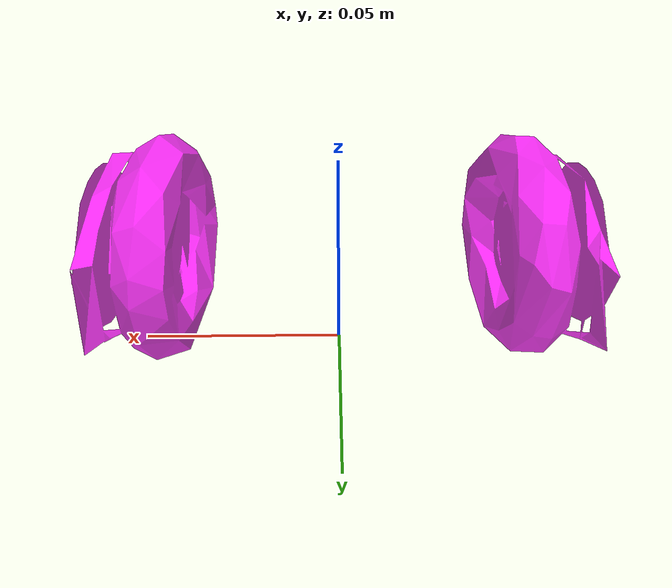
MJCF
<mujoco model="bottom_watertight_tiny">
  <default>
    <default group="2" type="mesh" contype="0" conaffinity="0">
      <geom group="2" type="mesh" contype="0" conaffinity="0"/>
    </default>
    <default group="3" type="mesh">
      <geom group="3" type="mesh"/>
    </default>
  </default>
  <asset>
    <mesh file="bottom_watertight_tiny.obj"/>
    <mesh file="bottom_watertight_tiny_collision_0.obj"/>
    <mesh file="bottom_watertight_tiny_collision_1.obj"/>
    <mesh file="bottom_watertight_tiny_collision_2.obj"/>
    <mesh file="bottom_watertight_tiny_collision_3.obj"/>
    <mesh file="bottom_watertight_tiny_collision_4.obj"/>
    <mesh file="bottom_watertight_tiny_collision_5.obj"/>
    <mesh file="bottom_watertight_tiny_collision_6.obj"/>
    <mesh file="bottom_watertight_tiny_collision_7.obj"/>
    <mesh file="bottom_watertight_tiny_collision_8.obj"/>
    <mesh file="bottom_watertight_tiny_collision_9.obj"/>
    <mesh file="bottom_watertight_tiny_collision_10.obj"/>
    <mesh file="bottom_watertight_tiny_collision_11.obj"/>
    <mesh file="bottom_watertight_tiny_collision_12.obj"/>
    <mesh file="bottom_watertight_tiny_collision_13.obj"/>
    <mesh file="bottom_watertight_tiny_collision_14.obj"/>
    <mesh file="bottom_watertight_tiny_collision_15.obj"/>
    <mesh file="bottom_watertight_tiny_collision_16.obj"/>
    <mesh file="bottom_watertight_tiny_collision_17.obj"/>
    <mesh file="bottom_watertight_tiny_collision_18.obj"/>
    <mesh file="bottom_watertight_tiny_collision_19.obj"/>
    <mesh file="bottom_watertight_tiny_collision_20.obj"/>
    <mesh file="bottom_watertight_tiny_collision_21.obj"/>
    <mesh file="bottom_watertight_tiny_collision_22.obj"/>
    <mesh file="bottom_watertight_tiny_collision_23.obj"/>
    <mesh file="bottom_watertight_tiny_collision_24.obj"/>
    <mesh file="bottom_watertight_tiny_collision_25.obj"/>
    <mesh file="bottom_watertight_tiny_collision_26.obj"/>
    <mesh file="bottom_watertight_tiny_collision_27.obj"/>
    <mesh file="bottom_watertight_tiny_collision_28.obj"/>
    <mesh file="bottom_watertight_tiny_collision_29.obj"/>
    <mesh file="bottom_watertight_tiny_collision_30.obj"/>
    <mesh file="bottom_watertight_tiny_collision_31.obj"/>
    <mesh file="bottom_watertight_tiny_collision_32.obj"/>
    <mesh file="bottom_watertight_tiny_collision_33.obj"/>
    <mesh file="bottom_watertight_tiny_collision_34.obj"/>
    <mesh file="bottom_watertight_tiny_collision_35.obj"/>
    <mesh file="bottom_watertight_tiny_collision_36.obj"/>
    <mesh file="bottom_watertight_tiny_collision_37.obj"/>
    <mesh file="bottom_watertight_tiny_collision_38.obj"/>
    <mesh file="bottom_watertight_tiny_collision_39.obj"/>
    <mesh file="bottom_watertight_tiny_collision_40.obj"/>
    <mesh file="bottom_watertight_tiny_collision_41.obj"/>
    <mesh file="bottom_watertight_tiny_collision_42.obj"/>
    <mesh file="bottom_watertight_tiny_collision_43.obj"/>
    <mesh file="bottom_watertight_tiny_collision_44.obj"/>
    <mesh file="bottom_watertight_tiny_collision_45.obj"/>
    <mesh file="bottom_watertight_tiny_collision_46.obj"/>
    <mesh file="bottom_watertight_tiny_collision_47.obj"/>
    <mesh file="bottom_watertight_tiny_collision_48.obj"/>
    <mesh file="bottom_watertight_tiny_collision_49.obj"/>
    <mesh file="bottom_watertight_tiny_collision_50.obj"/>
    <mesh file="bottom_watertight_tiny_collision_51.obj"/>
    <mesh file="bottom_watertight_tiny_collision_52.obj"/>
    <mesh file="bottom_watertight_tiny_collision_53.obj"/>
    <mesh file="bottom_watertight_tiny_collision_54.obj"/>
    <mesh file="bottom_watertight_tiny_collision_55.obj"/>
    <mesh file="bottom_watertight_tiny_collision_56.obj"/>
    <mesh file="bottom_watertight_tiny_collision_57.obj"/>
    <mesh file="bottom_watertight_tiny_collision_58.obj"/>
    <mesh file="bottom_watertight_tiny_collision_59.obj"/>
    <mesh file="bottom_watertight_tiny_collision_60.obj"/>
    <mesh file="bottom_watertight_tiny_collision_61.obj"/>
    <mesh file="bottom_watertight_tiny_collision_62.obj"/>
    <mesh file="bottom_watertight_tiny_collision_63.obj"/>
    <mesh file="bottom_watertight_tiny_collision_64.obj"/>
    <mesh file="bottom_watertight_tiny_collision_65.obj"/>
    <mesh file="bottom_watertight_tiny_collision_66.obj"/>
    <mesh file="bottom_watertight_tiny_collision_67.obj"/>
    <mesh file="bottom_watertight_tiny_collision_68.obj"/>
    <mesh file="bottom_watertight_tiny_collision_69.obj"/>
    <mesh file="bottom_watertight_tiny_collision_70.obj"/>
    <mesh file="bottom_watertight_tiny_collision_71.obj"/>
    <mesh file="bottom_watertight_tiny_collision_72.obj"/>
    <mesh file="bottom_watertight_tiny_collision_73.obj"/>
    <mesh file="bottom_watertight_tiny_collision_74.obj"/>
    <mesh file="bottom_watertight_tiny_collision_75.obj"/>
    <mesh file="bottom_watertight_tiny_collision_76.obj"/>
    <mesh file="bottom_watertight_tiny_collision_77.obj"/>
    <mesh file="bottom_watertight_tiny_collision_78.obj"/>
    <mesh file="bottom_watertight_tiny_collision_79.obj"/>
    <mesh file="bottom_watertight_tiny_collision_80.obj"/>
    <mesh file="bottom_watertight_tiny_collision_81.obj"/>
    <mesh file="bottom_watertight_tiny_collision_82.obj"/>
    <mesh file="bottom_watertight_tiny_collision_83.obj"/>
    <mesh file="bottom_watertight_tiny_collision_84.obj"/>
    <mesh file="bottom_watertight_tiny_collision_85.obj"/>
    <mesh file="bottom_watertight_tiny_collision_86.obj"/>
    <mesh file="bottom_watertight_tiny_collision_87.obj"/>
    <mesh file="bottom_watertight_tiny_collision_88.obj"/>
    <mesh file="bottom_watertight_tiny_collision_89.obj"/>
    <mesh file="bottom_watertight_tiny_collision_90.obj"/>
    <mesh file="bottom_watertight_tiny_collision_91.obj"/>
    <mesh file="bottom_watertight_tiny_collision_92.obj"/>
    <mesh file="bottom_watertight_tiny_collision_93.obj"/>
    <mesh file="bottom_watertight_tiny_collision_94.obj"/>
    <mesh file="bottom_watertight_tiny_collision_95.obj"/>
    <mesh file="bottom_watertight_tiny_collision_96.obj"/>
    <mesh file="bottom_watertight_tiny_collision_97.obj"/>
    <mesh file="bottom_watertight_tiny_collision_98.obj"/>
    <mesh file="bottom_watertight_tiny_collision_99.obj"/>
    <mesh file="bottom_watertight_tiny_collision_100.obj"/>
    <mesh file="bottom_watertight_tiny_collision_101.obj"/>
  </asset>
  <worldbody>
    <body name="bottom_watertight_tiny">
      <freejoint/>
      <geom mesh="bottom_watertight_tiny" group="2" type="mesh" rgba="1 0 1 0.8" contype="0" conaffinity="0"/>
      <geom mesh="bottom_watertight_tiny_collision_0" rgba="0.24096195613972105 0.5421580783433462 0.5392983928726247 1" group="3" type="mesh"/>
      <geom mesh="bottom_watertight_tiny_collision_1" rgba="0.6319146097396526 0.2818817736647574 0.16297873595078338 1" group="3" type="mesh"/>
      <geom mesh="bottom_watertight_tiny_collision_2" rgba="0.9082388305611817 0.9733134207968425 0.19926989230631542 1" group="3" type="mesh"/>
      <geom mesh="bottom_watertight_tiny_collision_3" rgba="0.9031623966752739 0.8375604274779315 0.08048533255276913 1" group="3" type="mesh"/>
      <geom mesh="bottom_watertight_tiny_collision_4" rgba="0.8160312159540282 0.7337352864206964 0.9858361726143116 1" group="3" type="mesh"/>
      <geom mesh="bottom_watertight_tiny_collision_5" rgba="0.7733738010002351 0.8795770396820035 0.8157599697077775 1" group="3" type="mesh"/>
      <geom mesh="bottom_watertight_tiny_collision_6" rgba="0.22276822748463732 0.258961487470838 0.6933595917677897 1" group="3" type="mesh"/>
      <geom mesh="bottom_watertight_tiny_collision_7" rgba="0.3126515100157229 0.21538793652305555 0.29389439015335717 1" group="3" type="mesh"/>
      <geom mesh="bottom_watertight_tiny_collision_8" rgba="0.5709482207702562 0.4337269094244868 0.944271661142551 1" group="3" type="mesh"/>
      <geom mesh="bottom_watertight_tiny_collision_9" rgba="0.8593975981107964 0.520338718179048 0.28311545852344566 1" group="3" type="mesh"/>
      <geom mesh="bottom_watertight_tiny_collision_10" rgba="0.303957038336757 0.5319218543688172 0.5150392606020688 1" group="3" type="mesh"/>
      <geom mesh="bottom_watertight_tiny_collision_11" rgba="0.861187536874124 0.7666954833362845 0.8849456834834334 1" group="3" type="mesh"/>
      <geom mesh="bottom_watertight_tiny_collision_12" rgba="0.5318329966046901 0.34101510811679225 0.20459282774213805 1" group="3" type="mesh"/>
      <geom mesh="bottom_watertight_tiny_collision_13" rgba="0.3535564203216044 0.7876060704217069 0.8927686082728027 1" group="3" type="mesh"/>
      <geom mesh="bottom_watertight_tiny_collision_14" rgba="0.7636820341390071 0.5569099179790775 0.6131038020788184 1" group="3" type="mesh"/>
      <geom mesh="bottom_watertight_tiny_collision_15" rgba="0.1223729822706704 0.13566067136763016 0.3851033651891651 1" group="3" type="mesh"/>
      <geom mesh="bottom_watertight_tiny_collision_16" rgba="0.9547397705832994 0.02429668045529132 0.16611042518121888 1" group="3" type="mesh"/>
      <geom mesh="bottom_watertight_tiny_collision_17" rgba="0.6295816598333575 0.5396597568944876 0.44147778990282827 1" group="3" type="mesh"/>
      <geom mesh="bottom_watertight_tiny_collision_18" rgba="0.5317850918304454 0.0613021228207542 0.9746938691709086 1" group="3" type="mesh"/>
      <geom mesh="bottom_watertight_tiny_collision_19" rgba="0.8917376873574734 0.18220652880549726 0.4594202065704418 1" group="3" type="mesh"/>
      <geom mesh="bottom_watertight_tiny_collision_20" rgba="0.7607599095839727 0.9578285105600348 0.9207620313885926 1" group="3" type="mesh"/>
      <geom mesh="bottom_watertight_tiny_collision_21" rgba="0.9221835110649367 0.6190470382260546 0.266562146319264 1" group="3" type="mesh"/>
      <geom mesh="bottom_watertight_tiny_collision_22" rgba="0.008699742470211658 0.12386153815552281 0.6428395540017974 1" group="3" type="mesh"/>
      <geom mesh="bottom_watertight_tiny_collision_23" rgba="0.5663123627520534 0.3800318213613235 0.6692720075202766 1" group="3" type="mesh"/>
      <geom mesh="bottom_watertight_tiny_collision_24" rgba="0.6849452573175914 0.655985352556722 0.22937564675382582 1" group="3" type="mesh"/>
      <geom mesh="bottom_watertight_tiny_collision_25" rgba="0.5194615215078798 0.32476780156250473 0.6974895102100831 1" group="3" type="mesh"/>
      <geom mesh="bottom_watertight_tiny_collision_26" rgba="0.32422957273229713 0.8598640851939391 0.475855854000825 1" group="3" type="mesh"/>
      <geom mesh="bottom_watertight_tiny_collision_27" rgba="0.9095864011272532 0.9226680077137589 0.492825142802335 1" group="3" type="mesh"/>
      <geom mesh="bottom_watertight_tiny_collision_28" rgba="0.30996289171130975 0.29062289721132717 0.07792903595459522 1" group="3" type="mesh"/>
      <geom mesh="bottom_watertight_tiny_collision_29" rgba="0.3430377215220539 0.12402681450751996 0.21156162052305072 1" group="3" type="mesh"/>
      <geom mesh="bottom_watertight_tiny_collision_30" rgba="0.7699336959273131 0.04544439974883152 0.1695942646708718 1" group="3" type="mesh"/>
      <geom mesh="bottom_watertight_tiny_collision_31" rgba="0.653045621784259 0.6264923296675311 0.931837762431559 1" group="3" type="mesh"/>
      <geom mesh="bottom_watertight_tiny_collision_32" rgba="0.07040844520532796 0.05081639750880251 0.798559746903004 1" group="3" type="mesh"/>
      <geom mesh="bottom_watertight_tiny_collision_33" rgba="0.21277514590467372 0.2390168557353346 0.9337664320362916 1" group="3" type="mesh"/>
      <geom mesh="bottom_watertight_tiny_collision_34" rgba="0.4800493019066163 0.28779438898262943 0.016864426431992707 1" group="3" type="mesh"/>
      <geom mesh="bottom_watertight_tiny_collision_35" rgba="0.4200955264488664 0.7746413932885478 0.3824196185197132 1" group="3" type="mesh"/>
      <geom mesh="bottom_watertight_tiny_collision_36" rgba="0.24881003355678488 0.7277908885934967 0.39856230525409686 1" group="3" type="mesh"/>
      <geom mesh="bottom_watertight_tiny_collision_37" rgba="0.8501002679110436 0.45521352630812617 0.48609212532840584 1" group="3" type="mesh"/>
      <geom mesh="bottom_watertight_tiny_collision_38" rgba="0.0950960169553563 0.02741973564866984 0.6295492606903732 1" group="3" type="mesh"/>
      <geom mesh="bottom_watertight_tiny_collision_39" rgba="0.2571031728308264 0.3137130891538956 0.28860233737211316 1" group="3" type="mesh"/>
      <geom mesh="bottom_watertight_tiny_collision_40" rgba="0.9867240892985447 0.5352282283033454 0.3424995787151429 1" group="3" type="mesh"/>
      <geom mesh="bottom_watertight_tiny_collision_41" rgba="0.7202504616531555 0.7724231241901712 0.03639670152752361 1" group="3" type="mesh"/>
      <geom mesh="bottom_watertight_tiny_collision_42" rgba="0.058836495174474646 0.6967600219807811 0.1576109719724773 1" group="3" type="mesh"/>
      <geom mesh="bottom_watertight_tiny_collision_43" rgba="0.40900647057081796 0.6091690147384105 0.904684254601225 1" group="3" type="mesh"/>
      <geom mesh="bottom_watertight_tiny_collision_44" rgba="0.8954312090295704 0.6109047468140707 0.2317131087711638 1" group="3" type="mesh"/>
      <geom mesh="bottom_watertight_tiny_collision_45" rgba="0.3520353204916288 0.11910803444766993 0.7526750901229481 1" group="3" type="mesh"/>
      <geom mesh="bottom_watertight_tiny_collision_46" rgba="0.8393618528535813 0.8570430074558884 0.628302786993944 1" group="3" type="mesh"/>
      <geom mesh="bottom_watertight_tiny_collision_47" rgba="0.29325339906010406 0.7047452111490363 0.5161933022080348 1" group="3" type="mesh"/>
      <geom mesh="bottom_watertight_tiny_collision_48" rgba="0.7411333553759425 0.9247405939933916 0.12868415455042193 1" group="3" type="mesh"/>
      <geom mesh="bottom_watertight_tiny_collision_49" rgba="0.05077113195867089 0.12138198472616635 0.47470012205158085 1" group="3" type="mesh"/>
      <geom mesh="bottom_watertight_tiny_collision_50" rgba="0.5186851632455296 0.8894039767972928 0.06792087102246158 1" group="3" type="mesh"/>
      <geom mesh="bottom_watertight_tiny_collision_51" rgba="0.6876442208094663 0.1036123611707036 0.23030400797878414 1" group="3" type="mesh"/>
      <geom mesh="bottom_watertight_tiny_collision_52" rgba="0.8393191240846926 0.9311676758345845 0.664933296483399 1" group="3" type="mesh"/>
      <geom mesh="bottom_watertight_tiny_collision_53" rgba="0.19684147431932597 0.7097409894103471 0.4156975105659094 1" group="3" type="mesh"/>
      <geom mesh="bottom_watertight_tiny_collision_54" rgba="0.7137611292808963 0.34026411495648645 0.6378232278328893 1" group="3" type="mesh"/>
      <geom mesh="bottom_watertight_tiny_collision_55" rgba="0.7090579009921597 0.08401865983811574 0.03215706338555002 1" group="3" type="mesh"/>
      <geom mesh="bottom_watertight_tiny_collision_56" rgba="0.17871209380041808 0.43204567064513477 0.16339897069314724 1" group="3" type="mesh"/>
      <geom mesh="bottom_watertight_tiny_collision_57" rgba="0.08186452000000188 0.7835802104597832 0.793095083864112 1" group="3" type="mesh"/>
      <geom mesh="bottom_watertight_tiny_collision_58" rgba="0.9886452250071632 0.41265717474469255 0.3451866963487552 1" group="3" type="mesh"/>
      <geom mesh="bottom_watertight_tiny_collision_59" rgba="0.07803452752028583 0.9135131933603313 0.27054708205366285 1" group="3" type="mesh"/>
      <geom mesh="bottom_watertight_tiny_collision_60" rgba="0.6002865251396851 0.00020142178638205 0.30011674083355133 1" group="3" type="mesh"/>
      <geom mesh="bottom_watertight_tiny_collision_61" rgba="0.9768310703432512 0.05338592808550746 0.477706173584883 1" group="3" type="mesh"/>
      <geom mesh="bottom_watertight_tiny_collision_62" rgba="0.451598017159066 0.5814920177776253 0.43024562491784446 1" group="3" type="mesh"/>
      <geom mesh="bottom_watertight_tiny_collision_63" rgba="0.9774620267920568 0.2508681628907772 0.4723344819741975 1" group="3" type="mesh"/>
      <geom mesh="bottom_watertight_tiny_collision_64" rgba="0.3558307203767861 0.6956121403178945 0.7161171842955549 1" group="3" type="mesh"/>
      <geom mesh="bottom_watertight_tiny_collision_65" rgba="0.5399614606512531 0.5594570430556822 0.21737959660744066 1" group="3" type="mesh"/>
      <geom mesh="bottom_watertight_tiny_collision_66" rgba="0.3257382929158158 0.5538301360974766 0.652642112292278 1" group="3" type="mesh"/>
      <geom mesh="bottom_watertight_tiny_collision_67" rgba="0.16485273310854098 0.6569796577121276 0.7272067054447007 1" group="3" type="mesh"/>
      <geom mesh="bottom_watertight_tiny_collision_68" rgba="0.8876215115043942 0.6046339830960713 0.22418366011841695 1" group="3" type="mesh"/>
      <geom mesh="bottom_watertight_tiny_collision_69" rgba="0.9436235618903076 0.7842313693576337 0.9859917432390126 1" group="3" type="mesh"/>
      <geom mesh="bottom_watertight_tiny_collision_70" rgba="0.19751106208570024 0.970583439723533 0.5336081963108904 1" group="3" type="mesh"/>
      <geom mesh="bottom_watertight_tiny_collision_71" rgba="0.42121299684072144 0.8846235786914567 0.855957474009495 1" group="3" type="mesh"/>
      <geom mesh="bottom_watertight_tiny_collision_72" rgba="0.7407102682096095 0.10886086960703711 0.15182615634032914 1" group="3" type="mesh"/>
      <geom mesh="bottom_watertight_tiny_collision_73" rgba="0.6596368609255464 0.3670180657019153 0.9889952340415201 1" group="3" type="mesh"/>
      <geom mesh="bottom_watertight_tiny_collision_74" rgba="0.6242180865231391 0.9856130277250094 0.41513017246534745 1" group="3" type="mesh"/>
      <geom mesh="bottom_watertight_tiny_collision_75" rgba="0.6590541204702218 0.821130713290206 0.7378039493077166 1" group="3" type="mesh"/>
      <geom mesh="bottom_watertight_tiny_collision_76" rgba="0.6074705196571171 0.9531617977105703 0.13416457902553314 1" group="3" type="mesh"/>
      <geom mesh="bottom_watertight_tiny_collision_77" rgba="0.4470024618770786 0.7261983043419589 0.6734290295597255 1" group="3" type="mesh"/>
      <geom mesh="bottom_watertight_tiny_collision_78" rgba="0.7660071931675343 0.16081453025177295 0.2544188567197243 1" group="3" type="mesh"/>
      <geom mesh="bottom_watertight_tiny_collision_79" rgba="0.8439538593370587 0.527761186936066 0.17679363123450975 1" group="3" type="mesh"/>
      <geom mesh="bottom_watertight_tiny_collision_80" rgba="0.39849681053166575 0.670433390774556 0.024171411989050595 1" group="3" type="mesh"/>
      <geom mesh="bottom_watertight_tiny_collision_81" rgba="0.9863452749965655 0.3373388289737518 0.5888118428139906 1" group="3" type="mesh"/>
      <geom mesh="bottom_watertight_tiny_collision_82" rgba="0.11778376719921468 0.1814055355887757 0.6419172573568981 1" group="3" type="mesh"/>
      <geom mesh="bottom_watertight_tiny_collision_83" rgba="0.3689146740854723 0.7773686078337688 0.5329342613454001 1" group="3" type="mesh"/>
      <geom mesh="bottom_watertight_tiny_collision_84" rgba="0.2876456036575141 0.5600439361120356 0.19630147863701808 1" group="3" type="mesh"/>
      <geom mesh="bottom_watertight_tiny_collision_85" rgba="0.19614276452616963 0.8625887314369853 0.2774519626519786 1" group="3" type="mesh"/>
      <geom mesh="bottom_watertight_tiny_collision_86" rgba="0.04331297869230366 0.2544059751348986 0.28577737839908524 1" group="3" type="mesh"/>
      <geom mesh="bottom_watertight_tiny_collision_87" rgba="0.6926759337484713 0.517774311566276 0.3024526957608513 1" group="3" type="mesh"/>
      <geom mesh="bottom_watertight_tiny_collision_88" rgba="0.3909547143155445 0.48085801426852814 0.09852819714308536 1" group="3" type="mesh"/>
      <geom mesh="bottom_watertight_tiny_collision_89" rgba="0.8810632286460051 0.5611511213991462 0.09153242806145112 1" group="3" type="mesh"/>
      <geom mesh="bottom_watertight_tiny_collision_90" rgba="0.9392453494427779 0.6653586109392385 0.796499628284977 1" group="3" type="mesh"/>
      <geom mesh="bottom_watertight_tiny_collision_91" rgba="0.05822543839549632 0.7376890195967991 0.6249802719261882 1" group="3" type="mesh"/>
      <geom mesh="bottom_watertight_tiny_collision_92" rgba="0.18913946519897984 0.7558633501971544 0.9055759299534998 1" group="3" type="mesh"/>
      <geom mesh="bottom_watertight_tiny_collision_93" rgba="0.20258858628072962 0.7146934770906999 0.8554161434430507 1" group="3" type="mesh"/>
      <geom mesh="bottom_watertight_tiny_collision_94" rgba="0.24441967867795045 0.5395831923815196 0.8608002485826846 1" group="3" type="mesh"/>
      <geom mesh="bottom_watertight_tiny_collision_95" rgba="0.6533539043070413 0.1607440344108101 0.4914627304678978 1" group="3" type="mesh"/>
      <geom mesh="bottom_watertight_tiny_collision_96" rgba="0.31979465407668994 0.5549030952273211 0.4418625646760832 1" group="3" type="mesh"/>
      <geom mesh="bottom_watertight_tiny_collision_97" rgba="0.31024291057989417 0.6321683480018382 0.7763150267211868 1" group="3" type="mesh"/>
      <geom mesh="bottom_watertight_tiny_collision_98" rgba="0.6101023882921923 0.7817158908556283 0.0754371368916914 1" group="3" type="mesh"/>
      <geom mesh="bottom_watertight_tiny_collision_99" rgba="0.6761519217645132 0.8381911056640761 0.9323024747799799 1" group="3" type="mesh"/>
      <geom mesh="bottom_watertight_tiny_collision_100" rgba="0.5412146829245107 0.3050085113857065 0.8786413992019838 1" group="3" type="mesh"/>
      <geom mesh="bottom_watertight_tiny_collision_101" rgba="0.7526604891662442 0.06018452840754329 0.9305855881103703 1" group="3" type="mesh"/>
    </body>
  </worldbody>
</mujoco>
